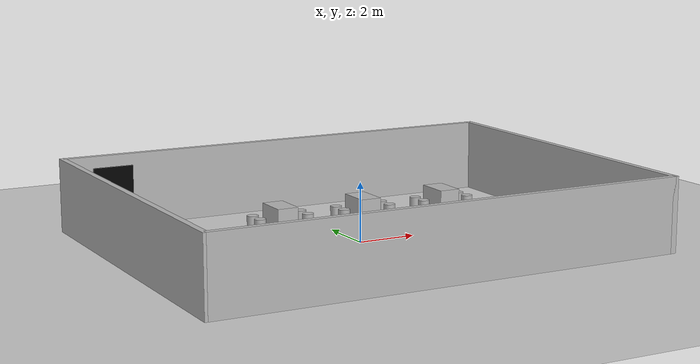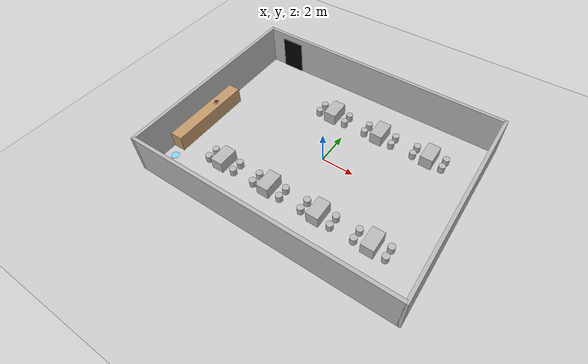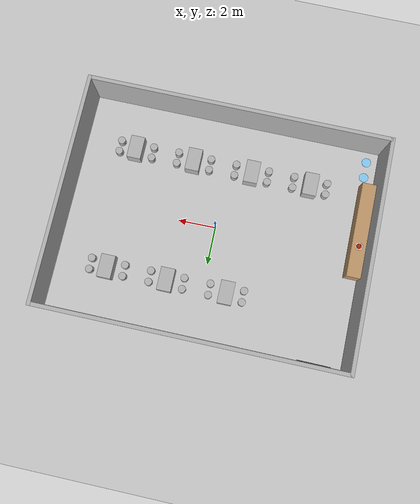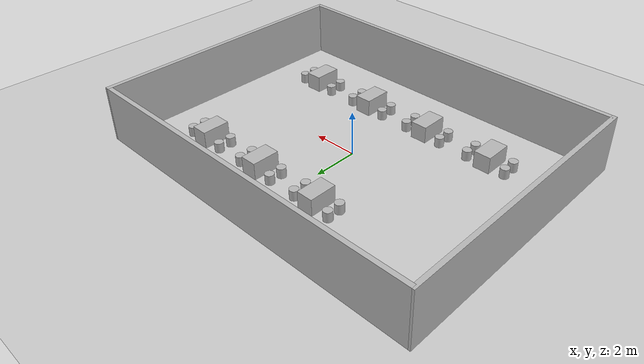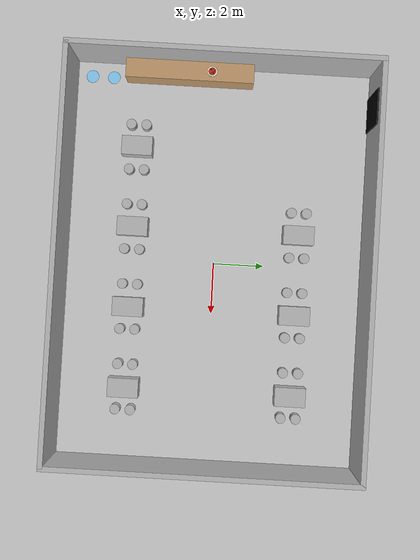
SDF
<sdf version="1.7">
 <world name="simple_restaurant">
  <include><uri>model://ground_plane</uri></include>
  <include><uri>model://sun</uri></include>
  <model name="wall_right">
   <static>true</static>
   <pose>0 -6.0 1.25 0 0 0</pose>
   <link name="wall_link">
    <collision name="collision"><geometry><box><size>16 0.2 2.5</size></box></geometry></collision>
    <visual name="visual"><geometry><box><size>16 0.2 2.5</size></box></geometry></visual>
   </link>
  </model>
  <model name="wall_left">
   <static>true</static>
   <pose>0 6.0 1.25 0 0 0</pose>
   <link name="wall_link">
    <collision name="collision"><geometry><box><size>16 0.2 2.5</size></box></geometry></collision>
    <visual name="visual"><geometry><box><size>16 0.2 2.5</size></box></geometry></visual>
   </link>
  </model>
  <model name="wall_rear">
   <static>true</static>
   <pose>-8.0 0 1.25 0 0 0</pose>
   <link name="wall_link">
    <collision name="collision"><geometry><box><size>0.2 12.2 2.5</size></box></geometry></collision>
    <visual name="visual"><geometry><box><size>0.2 12.2 2.5</size></box></geometry></visual>
   </link>
  </model>
  <model name="wall_front">
   <static>true</static>
   <pose>8.0 0 1.25 0 0 0</pose>
   <link name="wall_link">
    <collision name="collision"><geometry><box><size>0.2 12.2 2.5</size></box></geometry></collision>
    <visual name="visual"><geometry><box><size>0.2 12.2 2.5</size></box></geometry></visual>
   </link>
  </model>
  <model name="automatic_door">
   <static>true</static>
   <pose>-6.3 5.88 1.05 0 0 0</pose>
   <link name="door_link">
    <visual name="door_visual">
     <geometry><box><size>1.4 0.04 2.1</size></box></geometry>
     <material><ambient>0.01 0.01 0.01 1</ambient><diffuse>0.01 0.01 0.01 1</diffuse></material>
    </visual>
   </link>
  </model>
  <model name="kitchen_pickup_counter">
   <static>true</static>
   <pose>-7.525 -1.35625 0 0 0 1.5708</pose>
   <link name="pickup_counter_link">
    <collision name="collision">
     <pose>0 0 0.5 0 0 0</pose>
     <geometry><box><size>5.0625 0.75 1.0</size></box></geometry>
    </collision>
    <visual name="visual">
     <pose>0 0 0.5 0 0 0</pose>
     <geometry><box><size>5.0625 0.75 1.0</size></box></geometry>
     <material><ambient>0.76 0.60 0.42 1</ambient><diffuse>0.76 0.60 0.42 1</diffuse></material>
    </visual>
   </link>
  </model>
  <model name="tomato_pasta_plate">
   <static>true</static>
   <pose>-7.525 -0.474823 1.0 0 0 0</pose>
   <link name="plate_link">
    <visual name="plate">
     <pose>0 0 0.0125 0 0 0</pose>
     <geometry><cylinder><radius>0.20</radius><length>0.025</length></cylinder></geometry>
     <material><ambient>0.96 0.96 0.94 1</ambient><diffuse>0.96 0.96 0.94 1</diffuse></material>
    </visual>
    <visual name="tomato_sauce">
     <pose>0 0 0.031 0 0 0</pose>
     <geometry><cylinder><radius>0.145</radius><length>0.014</length></cylinder></geometry>
     <material><ambient>0.72 0.10 0.045 1</ambient><diffuse>0.88 0.16 0.06 1</diffuse></material>
    </visual>
    <visual name="pasta_strand_1">
     <pose>0.015 0.015 0.047 0 1.5708 0.30</pose>
     <geometry><cylinder><radius>0.009</radius><length>0.24</length></cylinder></geometry>
     <material><ambient>0.95 0.55 0.12 1</ambient><diffuse>1.0 0.63 0.16 1</diffuse></material>
    </visual>
    <visual name="pasta_strand_2">
     <pose>-0.010 -0.020 0.049 0 1.5708 -0.45</pose>
     <geometry><cylinder><radius>0.008</radius><length>0.22</length></cylinder></geometry>
     <material><ambient>0.95 0.55 0.12 1</ambient><diffuse>1.0 0.63 0.16 1</diffuse></material>
    </visual>
    <visual name="pasta_strand_3">
     <pose>-0.020 0.025 0.051 0 1.5708 1.05</pose>
     <geometry><cylinder><radius>0.008</radius><length>0.20</length></cylinder></geometry>
     <material><ambient>0.95 0.55 0.12 1</ambient><diffuse>1.0 0.63 0.16 1</diffuse></material>
    </visual>
    <visual name="meatball_1">
     <pose>-0.070 -0.045 0.060 0 0 0</pose>
     <geometry><sphere><radius>0.030</radius></sphere></geometry>
     <material><ambient>0.35 0.10 0.045 1</ambient><diffuse>0.48 0.15 0.06 1</diffuse></material>
    </visual>
    <visual name="meatball_2">
     <pose>0.065 0.040 0.061 0 0 0</pose>
     <geometry><sphere><radius>0.028</radius></sphere></geometry>
     <material><ambient>0.35 0.10 0.045 1</ambient><diffuse>0.48 0.15 0.06 1</diffuse></material>
    </visual>
    <visual name="basil_1">
     <pose>-0.015 0.075 0.058 0 0 0.45</pose>
     <geometry><box><size>0.055 0.025 0.006</size></box></geometry>
     <material><ambient>0.06 0.30 0.08 1</ambient><diffuse>0.10 0.48 0.12 1</diffuse></material>
    </visual>
    <visual name="basil_2">
     <pose>0.050 -0.060 0.057 0 0 -0.65</pose>
     <geometry><box><size>0.045 0.021 0.006</size></box></geometry>
     <material><ambient>0.06 0.30 0.08 1</ambient><diffuse>0.10 0.48 0.12 1</diffuse></material>
    </visual>
    <visual name="cheese">
     <pose>0.005 -0.005 0.059 0 0 0</pose>
     <geometry><sphere><radius>0.018</radius></sphere></geometry>
     <material><ambient>0.96 0.84 0.52 1</ambient><diffuse>1.0 0.90 0.58 1</diffuse></material>
    </visual>
   </link>
  </model>
  <model name="charging_station_1">
   <static>true</static>
   <pose>-7.32 -4.458333 0 0 0 0</pose>
   <link name="charging_station_1_link">
    <visual name="visual">
     <pose>0 0 0.0025 0 0 0</pose>
     <geometry><cylinder><radius>0.25</radius><length>0.005</length></cylinder></geometry>
     <material><ambient>0.53 0.81 0.98 1</ambient><diffuse>0.53 0.81 0.98 1</diffuse></material>
    </visual>
   </link>
  </model>
  <model name="charging_station_2">
   <static>true</static>
   <pose>-7.32 -5.329167 0 0 0 0</pose>
   <link name="charging_station_2_link">
    <visual name="visual">
     <pose>0 0 0.0025 0 0 0</pose>
     <geometry><cylinder><radius>0.25</radius><length>0.005</length></cylinder></geometry>
     <material><ambient>0.53 0.81 0.98 1</ambient><diffuse>0.53 0.81 0.98 1</diffuse></material>
    </visual>
   </link>
  </model>
  <include><uri>model://table_set</uri><name>table_set_1</name><pose>-1.3 3.3 0 0 0 1.5708</pose></include>
  <include><uri>model://table_set</uri><name>table_set_2</name><pose>1.9 3.3 0 0 0 1.5708</pose></include>
  <include><uri>model://table_set</uri><name>table_set_3</name><pose>5.1 3.3 0 0 0 1.5708</pose></include>
  <include><uri>model://table_set</uri><name>table_set_4</name><pose>-4.5 -3.3 0 0 0 1.5708</pose></include>
  <include><uri>model://table_set</uri><name>table_set_5</name><pose>-1.3 -3.3 0 0 0 1.5708</pose></include>
  <include><uri>model://table_set</uri><name>table_set_6</name><pose>1.9 -3.3 0 0 0 1.5708</pose></include>
  <include><uri>model://table_set</uri><name>table_set_7</name><pose>5.1 -3.3 0 0 0 1.5708</pose></include>
 </world>
</sdf>

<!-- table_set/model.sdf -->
<sdf version="1.7">

<model name="table_set">

  <static>true</static>

  <link name="table_set_link">

    <!-- simple_restaurant.world에서 model://table_set으로 불러오는 테이블 세트. -->
    <!-- 테이블 1개와 의자 4개의 시각·충돌 형상을 하나의 고정 모델로 묶는다. -->
    <!-- 테이블 -->

    <collision name="table_collision">
      <pose>0 0 0.375 0 0 0</pose>

      <geometry>
        <box>
          <size>1.22 0.75 0.75</size>
        </box>
      </geometry>
    </collision>

    <visual name="table_visual">
      <pose>0 0 0.375 0 0 0</pose>

      <geometry>
        <box>
          <size>1.22 0.75 0.75</size>
        </box>
      </geometry>
    </visual>

    <!-- 의자 1 -->

    <collision name="chair1_collision">
      <pose>-0.30 0.90 0.2 0 0 0</pose>

      <geometry>
        <cylinder>
          <radius>0.2</radius>
          <length>0.45</length>
        </cylinder>
      </geometry>
    </collision>

    <visual name="chair1_visual">
      <pose>-0.30 0.90 0.2 0 0 0</pose>

      <geometry>
        <cylinder>
          <radius>0.2</radius>
          <length>0.45</length>
        </cylinder>
      </geometry>
    </visual>

    <!-- 의자 2 -->

    <collision name="chair2_collision">
      <pose>0.30 0.90 0.2 0 0 0</pose>

      <geometry>
        <cylinder>
          <radius>0.2</radius>
          <length>0.45</length>
        </cylinder>
      </geometry>
    </collision>

    <visual name="chair2_visual">
      <pose>0.30 0.90 0.2 0 0 0</pose>

      <geometry>
        <cylinder>
          <radius>0.2</radius>
          <length>0.45</length>
        </cylinder>
      </geometry>
    </visual>

    <!-- 의자 3 -->

    <collision name="chair3_collision">
      <pose>-0.30 -0.90 0.2 0 0 0</pose>

      <geometry>
        <cylinder>
          <radius>0.2</radius>
          <length>0.45</length>
        </cylinder>
      </geometry>
    </collision>

    <visual name="chair3_visual">
      <pose>-0.30 -0.90 0.2 0 0 0</pose>

      <geometry>
        <cylinder>
          <radius>0.2</radius>
          <length>0.45</length>
        </cylinder>
      </geometry>
    </visual>

    <!-- 의자 4 -->

    <collision name="chair4_collision">
      <pose>0.30 -0.90 0.2 0 0 0</pose>

      <geometry>
        <cylinder>
          <radius>0.2</radius>
          <length>0.45</length>
        </cylinder>
      </geometry>
    </collision>

    <visual name="chair4_visual">
      <pose>0.30 -0.90 0.2 0 0 0</pose>

      <geometry>
        <cylinder>
          <radius>0.2</radius>
          <length>0.45</length>
        </cylinder>
      </geometry>
    </visual>

  </link>

</model>
</sdf>
